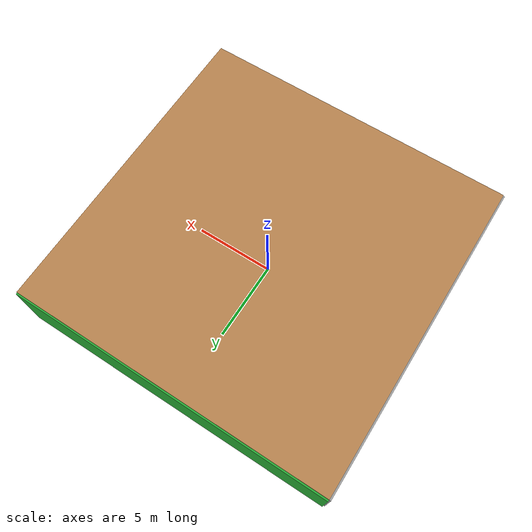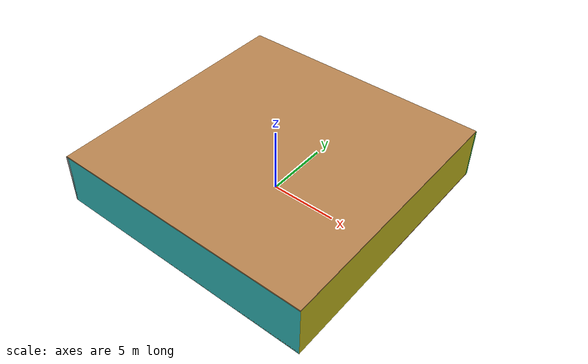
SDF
<sdf version="1.4">
 <world name="default">
  <physics type="ode">
   <max_step_size>0.001</max_step_size>
   <real_time_factor>1</real_time_factor>
   <real_time_update_rate>1000</real_time_update_rate>
   <gravity>0 0 -9.8</gravity>
  </physics>
  <scene><ambient>0.4 0.4 0.4 1</ambient><background>0.7 0.7 0.7 1</background><shadows>1</shadows></scene>
  <model name="Surrounding">
   <static>1</static>
   <link name="Ceiling">
    <collision name="Ceiling_Collision"><geometry><box><size>20 20 0.1</size></box></geometry></collision>
    <visual name="Ceiling_Visual">
     <geometry><box><size>20 20 0.1</size></box></geometry>
     <material>
      <script><uri>file://media/materials/scripts/gazebo.material</uri><name>Gazebo/Wood</name></script>
     </material>
    </visual>
    <pose>0 0 4.05 0 0 0</pose>
   </link>
   <link name="Wall_South">
    <collision name="Wall_South_Collision">
     <geometry><box><size>20 0 4</size></box></geometry>
     <pose>0 0 2 0 -0 0</pose>
    </collision>
    <visual name="Wall_South_Visual">
     <pose>0 0 2 0 -0 0</pose>
     <geometry><box><size>20 0 4</size></box></geometry>
     <material>
      <script>
       <uri>file://media/materials/scripts/gazebo.material</uri>
       <name>Gazebo/TurquoiseGlowOutline</name>
      </script>
     </material>
    </visual>
    <velocity_decay><linear>0</linear><angular>0</angular></velocity_decay>
    <pose>0 -10 0 0 -0 0</pose>
   </link>
   <link name="Wall_East">
    <collision name="Wall_21_Collision">
     <geometry><box><size>20 0 4</size></box></geometry>
     <pose>0 0 2 0 -0 0</pose>
    </collision>
    <visual name="Wall_21_Visual">
     <pose>0 0 2 0 -0 0</pose>
     <geometry><box><size>20 0 4</size></box></geometry>
     <material>
      <script><uri>file://media/materials/scripts/gazebo.material</uri><name>Gazebo/YellowGlow</name></script>
     </material>
    </visual>
    <velocity_decay><linear>0</linear><angular>0</angular></velocity_decay>
    <pose>10 0 0 0 -0 1.5708</pose>
   </link>
   <link name="Wall_North">
    <collision name="Wall_22_Collision">
     <geometry><box><size>20 0.2 4</size></box></geometry>
     <pose>0 0 2 0 -0 0</pose>
    </collision>
    <visual name="Wall_22_Visual">
     <pose>0 0 2 0 -0 0</pose>
     <geometry><box><size>20 0.2 4</size></box></geometry>
     <material>
      <script><uri>file://media/materials/scripts/gazebo.material</uri><name>Gazebo/GreenGlow</name></script>
     </material>
    </visual>
    <velocity_decay><linear>0</linear><angular>0</angular></velocity_decay>
    <pose>0 10 0 0 -0 0</pose>
   </link>
   <link name="Wall_West">
    <collision name="Wall_23_Collision">
     <geometry><box><size>20 0.2 4</size></box></geometry>
     <pose>0 0 2 0 -0 0</pose>
    </collision>
    <visual name="Wall_23_Visual">
     <pose>0 0 2 0 -0 0</pose>
     <geometry><box><size>20 0.2 4</size></box></geometry>
     <material>
      <script><uri>file://media/materials/scripts/gazebo.material</uri><name>Gazebo/GreyGradientSky</name></script>
     </material>
    </visual>
    <velocity_decay><linear>0</linear><angular>0</angular></velocity_decay>
    <pose>-10 0 0 0 0 -1.5708</pose>
   </link>
   <link name="Ground_link">
    <collision name="collision">
     <pose>0 0 .05 0 -0 0</pose>
     <geometry><box><size>20 20 0.1</size></box></geometry>
    </collision>
    <visual name="visual">
     <pose>0 0 .05 0 -0 0</pose>
     <geometry><box><size>20 20 0.1</size></box></geometry>
     <material>
      <script><uri>file://media/materials/scripts/gazebo.material</uri><name>Gazebo/WoodFloor</name></script>
     </material>
    </visual>
   </link>
   <static>1</static>
  </model>
  <spherical_coordinates>
   <surface_model>EARTH_WGS84</surface_model>
   <latitude_deg>0</latitude_deg>
   <longitude_deg>0</longitude_deg>
   <elevation>0</elevation>
   <heading_deg>0</heading_deg>
  </spherical_coordinates>
  <light name="lightball_0" type="diffuse">
   <diffuse>0.8 0.8 0.8 1</diffuse>
   <specular>0.2 0.2 0.2 1</specular>
   <attenuation>
    <range>100</range>
    <constant>0.7</constant>
    <linear>0.01</linear>
    <quadratic>0.001</quadratic>
   </attenuation>
   <direction>-0.5 0.1 -0.9</direction>
   <pose>6.91148554242 5.3922456649 2.58871758207 0 0 0</pose>
  </light>
  <light name="lightball_1" type="diffuse">
   <diffuse>0.8 0.8 0.8 1</diffuse>
   <specular>0.2 0.2 0.2 1</specular>
   <attenuation>
    <range>100</range>
    <constant>0.7</constant>
    <linear>0.01</linear>
    <quadratic>0.001</quadratic>
   </attenuation>
   <direction>-0.5 0.1 -0.9</direction>
   <pose>0.637570260134 -7.9688360318 0.740896922763 0 0 0</pose>
  </light>
  <light name="lightball_2" type="diffuse">
   <diffuse>0.8 0.8 0.8 1</diffuse>
   <specular>0.2 0.2 0.2 1</specular>
   <attenuation>
    <range>100</range>
    <constant>0.7</constant>
    <linear>0.01</linear>
    <quadratic>0.001</quadratic>
   </attenuation>
   <direction>-0.5 0.1 -0.9</direction>
   <pose>2.14537581342 -5.24420577957 3.39411655722 0 0 0</pose>
  </light>
  <light name="lightball_3" type="diffuse">
   <diffuse>0.8 0.8 0.8 1</diffuse>
   <specular>0.2 0.2 0.2 1</specular>
   <attenuation>
    <range>100</range>
    <constant>0.7</constant>
    <linear>0.01</linear>
    <quadratic>0.001</quadratic>
   </attenuation>
   <direction>-0.5 0.1 -0.9</direction>
   <pose>-6.19181270776 -0.30039494873 1.27738610641 0 0 0</pose>
  </light>
  <include><uri>model://cabinet</uri><pose>-6.49314054382 0.538935786186 0 0 0 0.790954203528</pose></include>
  <include><uri>model://cabinet</uri><pose>-6.91148456351 7.58108210885 0 0 0 2.75559741284</pose></include>
  <include>
   <uri>model://robocup_3Dsim_goal</uri>
   <pose>-1.42629411898 -4.4345998169 0 0 0 2.53360079438</pose>
  </include>
 </world>
</sdf>

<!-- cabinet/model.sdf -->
<sdf version="1.5">
  <model name="cabinet">
    <static>true</static>
    <link name="cabinet_bottom_plate">
      <inertial>
        <pose>0 0 -1 0 0 0</pose>
        <inertia>
          <ixx>2.050000</ixx>
          <ixy>0</ixy>
          <ixz>0</ixz>
          <iyy>2.050000</iyy>
          <iyz>0</iyz>
          <izz>2.050000</izz>
        </inertia>
        <mass>25.000000</mass>
      </inertial>
      <collision name="cabinet_bottom_plate_geom">
        <pose>0 0 0.010000 0 0 0</pose>
        <geometry>
          <box>
            <size>0.450000 0.450000 0.020000</size>
          </box>
        </geometry>
      </collision>
      <visual name="cabinet_bottom_plate_geom_visual">
        <pose>0 0 0.010000 0 0 0</pose>
        <geometry>
          <box>
            <size>0.450000 0.450000 0.020000</size>
          </box>
        </geometry>
        <material>
          <script>
            <uri>model://media/materials/scripts/gazebo.material</uri>
            <name>Gazebo/Wood</name>
          </script>
        </material>
      </visual>
      <collision name="cabinet_bottom_plate_geom_cabinet_back_plate">
        <pose>0.235000 0 0.510000 0 0 0</pose>
        <geometry>
          <box>
            <size>0.020000 0.450000 1.020000</size>
          </box>
        </geometry>
      </collision>
      <visual name="cabinet_bottom_plate_geom_cabinet_back_plate_visual">
        <pose>0.235000 0 0.510000 0 0 0</pose>
        <geometry>
          <box>
            <size>0.020000 0.450000 1.020000</size>
          </box>
        </geometry>
        <material>
          <script>
            <uri>model://media/materials/scripts/gazebo.material</uri>
            <name>Gazebo/Wood</name>
          </script>
        </material>
      </visual>
      <collision name="cabinet_bottom_plate_geom_cabinet_left_plate">
        <pose>0 0.235000 0.510000 0 0 0</pose>
        <geometry>
          <box>
            <size>0.450000 0.020000 1.020000</size>
          </box>
        </geometry>
      </collision>
      <visual name="cabinet_bottom_plate_geom_cabinet_left_plate_visual">
        <pose>0 0.235000 0.510000 0 0 0</pose>
        <geometry>
          <box>
            <size>0.450000 0.020000 1.020000</size>
          </box>
        </geometry>
        <material>
          <script>
            <uri>model://media/materials/scripts/gazebo.material</uri>
            <name>Gazebo/Wood</name>
          </script>
        </material>
      </visual>
      <collision name="cabinet_bottom_plate_geom_cabinet_middle_plate">
        <pose>0 0 0.510000 0 0 0</pose>
        <geometry>
          <box>
            <size>0.450000 0.450000 0.020000</size>
          </box>
        </geometry>
      </collision>
      <visual name="cabinet_bottom_plate_geom_cabinet_middle_plate_visual">
        <pose>0 0 0.510000 0 0 0</pose>
        <geometry>
          <box>
            <size>0.450000 0.450000 0.020000</size>
          </box>
        </geometry>
        <material>
          <script>
            <uri>model://media/materials/scripts/gazebo.material</uri>
            <name>Gazebo/Wood</name>
          </script>
        </material>
      </visual>
      <collision name="cabinet_bottom_plate_geom_cabinet_right_plate">
        <pose>0 -0.235000 0.510000 0 0 0</pose>
        <geometry>
          <box>
            <size>0.450000 0.020000 1.020000</size>
          </box>
        </geometry>
      </collision>
      <visual name="cabinet_bottom_plate_geom_cabinet_right_plate_visual">
        <pose>0 -0.235000 0.510000 0 0 0</pose>
        <geometry>
          <box>
            <size>0.450000 0.020000 1.020000</size>
          </box>
        </geometry>
        <material>
          <script>
            <uri>model://media/materials/scripts/gazebo.material</uri>
            <name>Gazebo/Wood</name>
          </script>
        </material>
      </visual>
      <collision name="cabinet_bottom_plate_geom_cabinet_top_plate">
        <pose>0 0 1.010000 0 0 0</pose>
        <geometry>
          <box>
            <size>0.450000 0.450000 0.020000</size>
          </box>
        </geometry>
      </collision>
      <visual name="cabinet_bottom_plate_geom_cabinet_top_plate_visual">
        <pose>0 0 1.010000 0 0 0</pose>
        <geometry>
          <box>
            <size>0.450000 0.450000 0.020000</size>
          </box>
        </geometry>
        <material>
          <script>
            <uri>model://media/materials/scripts/gazebo.material</uri>
            <name>Gazebo/Wood</name>
          </script>
        </material>
      </visual>
    </link>
  </model>
</sdf>

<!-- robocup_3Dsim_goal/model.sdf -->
<sdf version="1.5">
  <model name="robocup_3d_goal">
    <static>true</static>
    <link name="left_post">
      <pose>0 1.05 0.45 0 0 0</pose>
      <collision name="collision">
        <geometry>
          <cylinder>
            <radius>0.05</radius>
            <length>0.9</length>
          </cylinder>
        </geometry>
      </collision>
      <visual name="visual">
        <geometry>
          <cylinder>
            <radius>0.05</radius>
            <length>0.9</length>
          </cylinder>
        </geometry>
        <material>
          <script>
            <uri>file://media/materials/scripts/gazebo.material</uri>
            <name>Gazebo/ZincYellow</name>
          </script>
        </material>
      </visual>
    </link>
    <link name="left_support_horiz_lower">
      <pose>0.30 1.05 0.01 0 0 0</pose>
      <collision name="collision">
        <geometry>
          <box>
            <size>0.50 0.02 0.02</size>
          </box>
        </geometry>
      </collision>
      <visual name="visual">
        <geometry>
          <box>
            <size>0.50 0.02 0.02</size>
          </box>
        </geometry>
        <material>
          <script>
            <uri>file://media/materials/scripts/gazebo.material</uri>
            <name>Gazebo/White</name>
          </script>
        </material>
      </visual>
    </link>
    <link name="left_support_horiz_upper">
      <pose>0.30 1.05 0.79 0 0 0</pose>
      <collision name="collision">
        <geometry>
          <box>
            <size>0.50 0.02 0.02</size>
          </box>
        </geometry>
      </collision>
      <visual name="visual">
        <geometry>
          <box>
            <size>0.50 0.02 0.02</size>
          </box>
        </geometry>
        <material>
          <script>
            <uri>file://media/materials/scripts/gazebo.material</uri>
            <name>Gazebo/White</name>
          </script>
        </material>
      </visual>
    </link>
    <link name="left_support_vertical">
      <pose>0.56 1.05 0.4 0 1.5708 0</pose>
      <collision name="collision">
        <geometry>
          <box>
            <size>0.80 0.02 0.02</size>
          </box>
        </geometry>
      </collision>
      <visual name="visual">
        <geometry>
          <box>
            <size>0.80 0.02 0.02</size>
          </box>
        </geometry>
        <material>
          <script>
            <uri>file://media/materials/scripts/gazebo.material</uri>
            <name>Gazebo/White</name>
          </script>
        </material>
      </visual>
    </link>
    <link name="right_support_horiz_lower">
      <pose>0.30 -1.05 0.01 0 0 0</pose>
      <collision name="collision">
        <geometry>
          <box>
            <size>0.50 0.02 0.02</size>
          </box>
        </geometry>
      </collision>
      <visual name="visual">
        <geometry>
          <box>
            <size>0.50 0.02 0.02</size>
          </box>
        </geometry>
        <material>
          <script>
            <uri>file://media/materials/scripts/gazebo.material</uri>
            <name>Gazebo/White</name>
          </script>
        </material>
      </visual>
    </link>
    <link name="right_support_horiz_upper">
      <pose>0.30 -1.05 0.79 0 0 0</pose>
      <collision name="collision">
        <geometry>
          <box>
            <size>0.50 0.02 0.02</size>
          </box>
        </geometry>
      </collision>
      <visual name="visual">
        <geometry>
          <box>
            <size>0.50 0.02 0.02</size>
          </box>
        </geometry>
        <material>
          <script>
            <uri>file://media/materials/scripts/gazebo.material</uri>
            <name>Gazebo/White</name>
          </script>
        </material>
      </visual>
    </link>
    <link name="right_support_vertical">
      <pose>0.56 -1.05 0.4 0 1.5708 0</pose>
      <collision name="collision">
        <geometry>
          <box>
            <size>0.80 0.02 0.02</size>
          </box>
        </geometry>
      </collision>
      <visual name="visual">
        <geometry>
          <box>
            <size>0.80 0.02 0.02</size>
          </box>
        </geometry>
        <material>
          <script>
            <uri>file://media/materials/scripts/gazebo.material</uri>
            <name>Gazebo/White</name>
          </script>
        </material>
      </visual>
    </link>
    <link name="center_support_horiz_lower">
      <pose>0.56 0 0.01 0 1.5708 0</pose>
      <collision name="collision">
        <geometry>
          <box>
            <size>0.02 2.08 0.02</size>
          </box>
        </geometry>
      </collision>
      <visual name="visual">
        <geometry>
          <box>
            <size>0.02 2.08 0.02</size>
          </box>
        </geometry>
        <material>
          <script>
            <uri>file://media/materials/scripts/gazebo.material</uri>
            <name>Gazebo/White</name>
          </script>
        </material>
      </visual>
    </link>
    <link name="center_support_horiz_upper">
      <pose>0.56 0 0.79 0 1.5708 0</pose>
      <collision name="collision">
        <geometry>
          <box>
            <size>0.02 2.08 0.02</size>
          </box>
        </geometry>
      </collision>
      <visual name="visual">
        <geometry>
          <box>
            <size>0.02 2.08 0.02</size>
          </box>
        </geometry>
        <material>
          <script>
            <uri>file://media/materials/scripts/gazebo.material</uri>
            <name>Gazebo/White</name>
          </script>
        </material>
      </visual>
    </link>
    <link name="right_post">
      <pose>0 -1.05 0.45 0 0 0</pose>
      <collision name="collision">
        <geometry>
          <cylinder>
            <radius>0.05</radius>
            <length>0.9</length>
          </cylinder>
        </geometry>
      </collision>
      <visual name="visual">
        <geometry>
          <cylinder>
            <radius>0.05</radius>
            <length>0.9</length>
          </cylinder>
        </geometry>
        <material>
          <script>
            <uri>file://media/materials/scripts/gazebo.material</uri>
            <name>Gazebo/ZincYellow</name>
          </script>
        </material>
      </visual>
    </link>
    <link name="crossbar">
      <pose>0 0 0.85 1.57 1.57 0</pose>
      <collision name="collision">
        <geometry>
          <cylinder>
            <radius>0.05</radius>
            <length>2.0</length>
          </cylinder>
        </geometry>
      </collision>
      <visual name="visual">
        <geometry>
          <cylinder>
            <radius>0.05</radius>
            <length>2.0</length>
          </cylinder>
        </geometry>
        <material>
          <script>
            <uri>file://media/materials/scripts/gazebo.material</uri>
            <name>Gazebo/ZincYellow</name>
          </script>
        </material>
      </visual>
    </link>
    <link name="center_net">
      <pose>0.56 0 0.40 0 0 0</pose>
      <collision name="collision">
        <geometry>
          <box>
            <size>0.01 2.1 0.80</size>
          </box>
        </geometry>
      </collision>
      <visual name="visual">
        <geometry>
          <box>
            <size>0.01 2.1 0.80</size>
          </box>
        </geometry>
        <material>
          <script>
            <uri>model://../model_source/models/robocup09_spl_field/materials/scripts/</uri>
            <uri>model://../model_source/models/robocup09_spl_field/materials/textures/</uri>
            <name>RoboCup/Net</name>
          </script>
        </material>
      </visual>
    </link>
    <link name="left_net">
      <pose>0.30 1.05 0.40 0 0 0</pose>
      <collision name="collision">
        <geometry>
          <box>
            <size>0.50 0.01 0.76</size>
          </box>
        </geometry>
      </collision>
      <visual name="visual">
        <geometry>
          <box>
            <size>0.50 0.01 0.76</size>
          </box>
        </geometry>
        <material>
          <script>
            <uri>model://../model_source/models/robocup09_spl_field/materials/scripts/</uri>
            <uri>model://../model_source/models/robocup09_spl_field/materials/textures/</uri>
            <name>RoboCup/Net</name>
          </script>
        </material>
      </visual>
    </link>
    <link name="right_net">
      <pose>0.30 -1.05 0.40 0 0 0</pose>
      <collision name="collision">
        <geometry>
          <box>
            <size>0.50 0.01 0.76</size>
          </box>
        </geometry>
      </collision>
      <visual name="visual">
        <geometry>
          <box>
            <size>0.50 0.01 0.76</size>
          </box>
        </geometry>
        <material>
          <script>
            <uri>model://../model_source/models/robocup09_spl_field/materials/scripts/</uri>
            <uri>model://../model_source/models/robocup09_spl_field/materials/textures/</uri>
            <name>RoboCup/Net</name>
          </script>
        </material>
      </visual>
    </link>
  </model>
</sdf>
